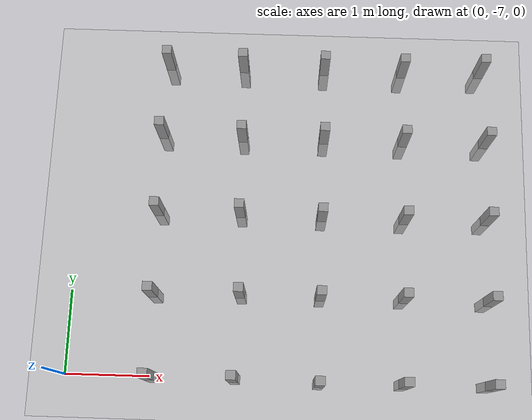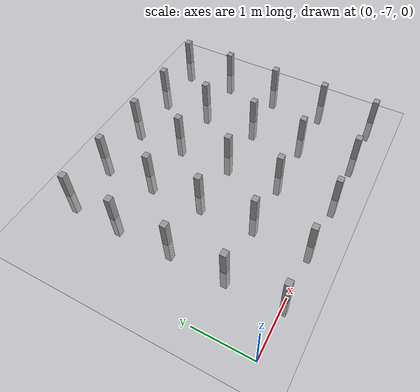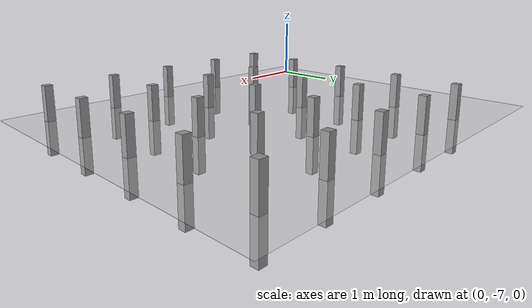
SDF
<sdf version="1.7">
 <world name="default">
  <model name="ground_plane">
   <static>1</static>
   <link name="link">
    <collision name="collision">
     <geometry><plane><normal>0 0 1</normal><size>100 100</size></plane></geometry>
     <surface><friction><ode><mu>100</mu><mu2>50</mu2></ode></friction></surface>
    </collision>
    <visual name="visual">
     <cast_shadows>0</cast_shadows>
     <geometry><plane><normal>0 0 1</normal><size>100 100</size></plane></geometry>
     <material>
      <script><uri>file://media/materials/scripts/gazebo.material</uri><name>Gazebo/Grey</name></script>
     </material>
    </visual>
   </link>
  </model>
  <model name="poles">
   <link name="link_7">
    <inertial>
     <mass>0.0123232</mass>
     <inertia>
      <ixx>0.0010387</ixx>
      <ixy>0</ixy>
      <ixz>0</ixz>
      <iyy>0.00104054</iyy>
      <iyz>0</iyz>
      <izz>2.53698e-05</izz>
     </inertia>
    </inertial>
    <pose>-1.97597 1.95861 0 0 -0 0</pose>
    <visual name="visual">
     <geometry><box><size>0.115098 0.107036 1</size></box></geometry>
     <material>
      <lighting>1</lighting>
      <script><uri>file://media/materials/scripts/gazebo.material</uri><name>Gazebo/Grey</name></script>
      <shader type="pixel"/>
     </material>
    </visual>
    <collision name="collision">
     <geometry><box><size>0.115098 0.107036 1</size></box></geometry>
     <surface>
      <friction>
       <ode><mu>1</mu><mu2>1</mu2><fdir1>0 0 0</fdir1><slip1>0</slip1><slip2>0</slip2></ode>
       <torsional>
        <coefficient>1</coefficient>
        <patch_radius>0</patch_radius>
        <surface_radius>0</surface_radius>
        <use_patch_radius>1</use_patch_radius>
        <ode><slip>0</slip></ode>
       </torsional>
      </friction>
      <bounce><restitution_coefficient>0</restitution_coefficient><threshold>1e+06</threshold></bounce>
      <contact>
       <collide_without_contact>0</collide_without_contact>
       <collide_without_contact_bitmask>1</collide_without_contact_bitmask>
       <collide_bitmask>1</collide_bitmask>
       <ode>
        <soft_cfm>0</soft_cfm>
        <soft_erp>0.2</soft_erp>
        <kp>1e+13</kp>
        <kd>1</kd>
        <max_vel>0.01</max_vel>
        <min_depth>0</min_depth>
       </ode>
       <bullet>
        <split_impulse>1</split_impulse>
        <split_impulse_penetration_threshold>-0.01</split_impulse_penetration_threshold>
        <soft_cfm>0</soft_cfm>
        <soft_erp>0.2</soft_erp>
        <kp>1e+13</kp>
        <kd>1</kd>
       </bullet>
      </contact>
     </surface>
    </collision>
   </link>
   <link name="link_7_clone">
    <inertial>
     <mass>0.0123232</mass>
     <inertia>
      <ixx>0.0010387</ixx>
      <ixy>0</ixy>
      <ixz>0</ixz>
      <iyy>0.00104054</iyy>
      <iyz>0</iyz>
      <izz>2.53698e-05</izz>
     </inertia>
    </inertial>
    <pose>-1.03349 1.94927 0 0 -0 0</pose>
    <visual name="visual">
     <geometry><box><size>0.115098 0.107036 1</size></box></geometry>
     <material>
      <lighting>1</lighting>
      <script><uri>file://media/materials/scripts/gazebo.material</uri><name>Gazebo/Grey</name></script>
      <shader type="pixel"/>
     </material>
    </visual>
    <collision name="collision">
     <geometry><box><size>0.115098 0.107036 1</size></box></geometry>
     <surface>
      <friction>
       <ode><mu>1</mu><mu2>1</mu2><fdir1>0 0 0</fdir1><slip1>0</slip1><slip2>0</slip2></ode>
       <torsional>
        <coefficient>1</coefficient>
        <patch_radius>0</patch_radius>
        <surface_radius>0</surface_radius>
        <use_patch_radius>1</use_patch_radius>
        <ode><slip>0</slip></ode>
       </torsional>
      </friction>
      <bounce><restitution_coefficient>0</restitution_coefficient><threshold>1e+06</threshold></bounce>
      <contact>
       <collide_without_contact>0</collide_without_contact>
       <collide_without_contact_bitmask>1</collide_without_contact_bitmask>
       <collide_bitmask>1</collide_bitmask>
       <ode>
        <soft_cfm>0</soft_cfm>
        <soft_erp>0.2</soft_erp>
        <kp>1e+13</kp>
        <kd>1</kd>
        <max_vel>0.01</max_vel>
        <min_depth>0</min_depth>
       </ode>
       <bullet>
        <split_impulse>1</split_impulse>
        <split_impulse_penetration_threshold>-0.01</split_impulse_penetration_threshold>
        <soft_cfm>0</soft_cfm>
        <soft_erp>0.2</soft_erp>
        <kp>1e+13</kp>
        <kd>1</kd>
       </bullet>
      </contact>
     </surface>
    </collision>
   </link>
   <link name="link_7_clone_0">
    <inertial>
     <mass>0.0123232</mass>
     <inertia>
      <ixx>0.0010387</ixx>
      <ixy>0</ixy>
      <ixz>0</ixz>
      <iyy>0.00104054</iyy>
      <iyz>0</iyz>
      <izz>2.53698e-05</izz>
     </inertia>
    </inertial>
    <pose>-0.010746 1.94415 0 0 -0 0</pose>
    <visual name="visual">
     <geometry><box><size>0.115098 0.107036 1</size></box></geometry>
     <material>
      <lighting>1</lighting>
      <script><uri>file://media/materials/scripts/gazebo.material</uri><name>Gazebo/Grey</name></script>
      <shader type="pixel"/>
     </material>
    </visual>
    <collision name="collision">
     <geometry><box><size>0.115098 0.107036 1</size></box></geometry>
     <surface>
      <friction>
       <ode><mu>1</mu><mu2>1</mu2><fdir1>0 0 0</fdir1><slip1>0</slip1><slip2>0</slip2></ode>
       <torsional>
        <coefficient>1</coefficient>
        <patch_radius>0</patch_radius>
        <surface_radius>0</surface_radius>
        <use_patch_radius>1</use_patch_radius>
        <ode><slip>0</slip></ode>
       </torsional>
      </friction>
      <bounce><restitution_coefficient>0</restitution_coefficient><threshold>1e+06</threshold></bounce>
      <contact>
       <collide_without_contact>0</collide_without_contact>
       <collide_without_contact_bitmask>1</collide_without_contact_bitmask>
       <collide_bitmask>1</collide_bitmask>
       <ode>
        <soft_cfm>0</soft_cfm>
        <soft_erp>0.2</soft_erp>
        <kp>1e+13</kp>
        <kd>1</kd>
        <max_vel>0.01</max_vel>
        <min_depth>0</min_depth>
       </ode>
       <bullet>
        <split_impulse>1</split_impulse>
        <split_impulse_penetration_threshold>-0.01</split_impulse_penetration_threshold>
        <soft_cfm>0</soft_cfm>
        <soft_erp>0.2</soft_erp>
        <kp>1e+13</kp>
        <kd>1</kd>
       </bullet>
      </contact>
     </surface>
    </collision>
   </link>
   <link name="link_7_clone_1">
    <inertial>
     <mass>0.0123232</mass>
     <inertia>
      <ixx>0.0010387</ixx>
      <ixy>0</ixy>
      <ixz>0</ixz>
      <iyy>0.00104054</iyy>
      <iyz>0</iyz>
      <izz>2.53698e-05</izz>
     </inertia>
    </inertial>
    <pose>0.975472 1.93975 0 0 -0 0</pose>
    <visual name="visual">
     <geometry><box><size>0.115098 0.107036 1</size></box></geometry>
     <material>
      <lighting>1</lighting>
      <script><uri>file://media/materials/scripts/gazebo.material</uri><name>Gazebo/Grey</name></script>
      <shader type="pixel"/>
     </material>
    </visual>
    <collision name="collision">
     <geometry><box><size>0.115098 0.107036 1</size></box></geometry>
     <surface>
      <friction>
       <ode><mu>1</mu><mu2>1</mu2><fdir1>0 0 0</fdir1><slip1>0</slip1><slip2>0</slip2></ode>
       <torsional>
        <coefficient>1</coefficient>
        <patch_radius>0</patch_radius>
        <surface_radius>0</surface_radius>
        <use_patch_radius>1</use_patch_radius>
        <ode><slip>0</slip></ode>
       </torsional>
      </friction>
      <bounce><restitution_coefficient>0</restitution_coefficient><threshold>1e+06</threshold></bounce>
      <contact>
       <collide_without_contact>0</collide_without_contact>
       <collide_without_contact_bitmask>1</collide_without_contact_bitmask>
       <collide_bitmask>1</collide_bitmask>
       <ode>
        <soft_cfm>0</soft_cfm>
        <soft_erp>0.2</soft_erp>
        <kp>1e+13</kp>
        <kd>1</kd>
        <max_vel>0.01</max_vel>
        <min_depth>0</min_depth>
       </ode>
       <bullet>
        <split_impulse>1</split_impulse>
        <split_impulse_penetration_threshold>-0.01</split_impulse_penetration_threshold>
        <soft_cfm>0</soft_cfm>
        <soft_erp>0.2</soft_erp>
        <kp>1e+13</kp>
        <kd>1</kd>
       </bullet>
      </contact>
     </surface>
    </collision>
   </link>
   <link name="link_7_clone_10">
    <inertial>
     <mass>0.0123232</mass>
     <inertia>
      <ixx>0.0010387</ixx>
      <ixy>0</ixy>
      <ixz>0</ixz>
      <iyy>0.00104054</iyy>
      <iyz>0</iyz>
      <izz>2.53698e-05</izz>
     </inertia>
    </inertial>
    <pose>-0.001167 0.004188 0 0 -0 0</pose>
    <visual name="visual">
     <geometry><box><size>0.115098 0.107036 1</size></box></geometry>
     <material>
      <lighting>1</lighting>
      <script><uri>file://media/materials/scripts/gazebo.material</uri><name>Gazebo/Grey</name></script>
      <shader type="pixel"/>
     </material>
    </visual>
    <collision name="collision">
     <geometry><box><size>0.115098 0.107036 1</size></box></geometry>
     <surface>
      <friction>
       <ode><mu>1</mu><mu2>1</mu2><fdir1>0 0 0</fdir1><slip1>0</slip1><slip2>0</slip2></ode>
       <torsional>
        <coefficient>1</coefficient>
        <patch_radius>0</patch_radius>
        <surface_radius>0</surface_radius>
        <use_patch_radius>1</use_patch_radius>
        <ode><slip>0</slip></ode>
       </torsional>
      </friction>
      <bounce><restitution_coefficient>0</restitution_coefficient><threshold>1e+06</threshold></bounce>
      <contact>
       <collide_without_contact>0</collide_without_contact>
       <collide_without_contact_bitmask>1</collide_without_contact_bitmask>
       <collide_bitmask>1</collide_bitmask>
       <ode>
        <soft_cfm>0</soft_cfm>
        <soft_erp>0.2</soft_erp>
        <kp>1e+13</kp>
        <kd>1</kd>
        <max_vel>0.01</max_vel>
        <min_depth>0</min_depth>
       </ode>
       <bullet>
        <split_impulse>1</split_impulse>
        <split_impulse_penetration_threshold>-0.01</split_impulse_penetration_threshold>
        <soft_cfm>0</soft_cfm>
        <soft_erp>0.2</soft_erp>
        <kp>1e+13</kp>
        <kd>1</kd>
       </bullet>
      </contact>
     </surface>
    </collision>
   </link>
   <link name="link_7_clone_11">
    <inertial>
     <mass>0.0123232</mass>
     <inertia>
      <ixx>0.0010387</ixx>
      <ixy>0</ixy>
      <ixz>0</ixz>
      <iyy>0.00104054</iyy>
      <iyz>0</iyz>
      <izz>2.53698e-05</izz>
     </inertia>
    </inertial>
    <pose>1.00787 -0.002537 0 0 -0 0</pose>
    <visual name="visual">
     <geometry><box><size>0.115098 0.107036 1</size></box></geometry>
     <material>
      <lighting>1</lighting>
      <script><uri>file://media/materials/scripts/gazebo.material</uri><name>Gazebo/Grey</name></script>
      <shader type="pixel"/>
     </material>
    </visual>
    <collision name="collision">
     <geometry><box><size>0.115098 0.107036 1</size></box></geometry>
     <surface>
      <friction>
       <ode><mu>1</mu><mu2>1</mu2><fdir1>0 0 0</fdir1><slip1>0</slip1><slip2>0</slip2></ode>
       <torsional>
        <coefficient>1</coefficient>
        <patch_radius>0</patch_radius>
        <surface_radius>0</surface_radius>
        <use_patch_radius>1</use_patch_radius>
        <ode><slip>0</slip></ode>
       </torsional>
      </friction>
      <bounce><restitution_coefficient>0</restitution_coefficient><threshold>1e+06</threshold></bounce>
      <contact>
       <collide_without_contact>0</collide_without_contact>
       <collide_without_contact_bitmask>1</collide_without_contact_bitmask>
       <collide_bitmask>1</collide_bitmask>
       <ode>
        <soft_cfm>0</soft_cfm>
        <soft_erp>0.2</soft_erp>
        <kp>1e+13</kp>
        <kd>1</kd>
        <max_vel>0.01</max_vel>
        <min_depth>0</min_depth>
       </ode>
       <bullet>
        <split_impulse>1</split_impulse>
        <split_impulse_penetration_threshold>-0.01</split_impulse_penetration_threshold>
        <soft_cfm>0</soft_cfm>
        <soft_erp>0.2</soft_erp>
        <kp>1e+13</kp>
        <kd>1</kd>
       </bullet>
      </contact>
     </surface>
    </collision>
   </link>
   <link name="link_7_clone_12">
    <inertial>
     <mass>0.0123232</mass>
     <inertia>
      <ixx>0.0010387</ixx>
      <ixy>0</ixy>
      <ixz>0</ixz>
      <iyy>0.00104054</iyy>
      <iyz>0</iyz>
      <izz>2.53698e-05</izz>
     </inertia>
    </inertial>
    <pose>2.00979 0.01516 0 0 -0 0</pose>
    <visual name="visual">
     <geometry><box><size>0.115098 0.107036 1</size></box></geometry>
     <material>
      <lighting>1</lighting>
      <script><uri>file://media/materials/scripts/gazebo.material</uri><name>Gazebo/Grey</name></script>
      <shader type="pixel"/>
     </material>
    </visual>
    <collision name="collision">
     <geometry><box><size>0.115098 0.107036 1</size></box></geometry>
     <surface>
      <friction>
       <ode><mu>1</mu><mu2>1</mu2><fdir1>0 0 0</fdir1><slip1>0</slip1><slip2>0</slip2></ode>
       <torsional>
        <coefficient>1</coefficient>
        <patch_radius>0</patch_radius>
        <surface_radius>0</surface_radius>
        <use_patch_radius>1</use_patch_radius>
        <ode><slip>0</slip></ode>
       </torsional>
      </friction>
      <bounce><restitution_coefficient>0</restitution_coefficient><threshold>1e+06</threshold></bounce>
      <contact>
       <collide_without_contact>0</collide_without_contact>
       <collide_without_contact_bitmask>1</collide_without_contact_bitmask>
       <collide_bitmask>1</collide_bitmask>
       <ode>
        <soft_cfm>0</soft_cfm>
        <soft_erp>0.2</soft_erp>
        <kp>1e+13</kp>
        <kd>1</kd>
        <max_vel>0.01</max_vel>
        <min_depth>0</min_depth>
       </ode>
       <bullet>
        <split_impulse>1</split_impulse>
        <split_impulse_penetration_threshold>-0.01</split_impulse_penetration_threshold>
        <soft_cfm>0</soft_cfm>
        <soft_erp>0.2</soft_erp>
        <kp>1e+13</kp>
        <kd>1</kd>
       </bullet>
      </contact>
     </surface>
    </collision>
   </link>
   <link name="link_7_clone_13">
    <inertial>
     <mass>0.0123232</mass>
     <inertia>
      <ixx>0.0010387</ixx>
      <ixy>0</ixy>
      <ixz>0</ixz>
      <iyy>0.00104054</iyy>
      <iyz>0</iyz>
      <izz>2.53698e-05</izz>
     </inertia>
    </inertial>
    <pose>-2.01398 -0.996581 0 0 -0 0</pose>
    <visual name="visual">
     <geometry><box><size>0.115098 0.107036 1</size></box></geometry>
     <material>
      <lighting>1</lighting>
      <script><uri>file://media/materials/scripts/gazebo.material</uri><name>Gazebo/Grey</name></script>
      <shader type="pixel"/>
     </material>
    </visual>
    <collision name="collision">
     <geometry><box><size>0.115098 0.107036 1</size></box></geometry>
     <surface>
      <friction>
       <ode><mu>1</mu><mu2>1</mu2><fdir1>0 0 0</fdir1><slip1>0</slip1><slip2>0</slip2></ode>
       <torsional>
        <coefficient>1</coefficient>
        <patch_radius>0</patch_radius>
        <surface_radius>0</surface_radius>
        <use_patch_radius>1</use_patch_radius>
        <ode><slip>0</slip></ode>
       </torsional>
      </friction>
      <bounce><restitution_coefficient>0</restitution_coefficient><threshold>1e+06</threshold></bounce>
      <contact>
       <collide_without_contact>0</collide_without_contact>
       <collide_without_contact_bitmask>1</collide_without_contact_bitmask>
       <collide_bitmask>1</collide_bitmask>
       <ode>
        <soft_cfm>0</soft_cfm>
        <soft_erp>0.2</soft_erp>
        <kp>1e+13</kp>
        <kd>1</kd>
        <max_vel>0.01</max_vel>
        <min_depth>0</min_depth>
       </ode>
       <bullet>
        <split_impulse>1</split_impulse>
        <split_impulse_penetration_threshold>-0.01</split_impulse_penetration_threshold>
        <soft_cfm>0</soft_cfm>
        <soft_erp>0.2</soft_erp>
        <kp>1e+13</kp>
        <kd>1</kd>
       </bullet>
      </contact>
     </surface>
    </collision>
   </link>
   <link name="link_7_clone_14">
    <inertial>
     <mass>0.0123232</mass>
     <inertia>
      <ixx>0.0010387</ixx>
      <ixy>0</ixy>
      <ixz>0</ixz>
      <iyy>0.00104054</iyy>
      <iyz>0</iyz>
      <izz>2.53698e-05</izz>
     </inertia>
    </inertial>
    <pose>-0.964132 -0.976664 0 0 -0 0</pose>
    <visual name="visual">
     <geometry><box><size>0.115098 0.107036 1</size></box></geometry>
     <material>
      <lighting>1</lighting>
      <script><uri>file://media/materials/scripts/gazebo.material</uri><name>Gazebo/Grey</name></script>
      <shader type="pixel"/>
     </material>
    </visual>
    <collision name="collision">
     <geometry><box><size>0.115098 0.107036 1</size></box></geometry>
     <surface>
      <friction>
       <ode><mu>1</mu><mu2>1</mu2><fdir1>0 0 0</fdir1><slip1>0</slip1><slip2>0</slip2></ode>
       <torsional>
        <coefficient>1</coefficient>
        <patch_radius>0</patch_radius>
        <surface_radius>0</surface_radius>
        <use_patch_radius>1</use_patch_radius>
        <ode><slip>0</slip></ode>
       </torsional>
      </friction>
      <bounce><restitution_coefficient>0</restitution_coefficient><threshold>1e+06</threshold></bounce>
      <contact>
       <collide_without_contact>0</collide_without_contact>
       <collide_without_contact_bitmask>1</collide_without_contact_bitmask>
       <collide_bitmask>1</collide_bitmask>
       <ode>
        <soft_cfm>0</soft_cfm>
        <soft_erp>0.2</soft_erp>
        <kp>1e+13</kp>
        <kd>1</kd>
        <max_vel>0.01</max_vel>
        <min_depth>0</min_depth>
       </ode>
       <bullet>
        <split_impulse>1</split_impulse>
        <split_impulse_penetration_threshold>-0.01</split_impulse_penetration_threshold>
        <soft_cfm>0</soft_cfm>
        <soft_erp>0.2</soft_erp>
        <kp>1e+13</kp>
        <kd>1</kd>
       </bullet>
      </contact>
     </surface>
    </collision>
   </link>
   <link name="link_7_clone_15">
    <inertial>
     <mass>0.0123232</mass>
     <inertia>
      <ixx>0.0010387</ixx>
      <ixy>0</ixy>
      <ixz>0</ixz>
      <iyy>0.00104054</iyy>
      <iyz>0</iyz>
      <izz>2.53698e-05</izz>
     </inertia>
    </inertial>
    <pose>0.001948 -0.983432 0 0 -0 0</pose>
    <visual name="visual">
     <geometry><box><size>0.115098 0.107036 1</size></box></geometry>
     <material>
      <lighting>1</lighting>
      <script><uri>file://media/materials/scripts/gazebo.material</uri><name>Gazebo/Grey</name></script>
      <shader type="pixel"/>
     </material>
    </visual>
    <collision name="collision">
     <geometry><box><size>0.115098 0.107036 1</size></box></geometry>
     <surface>
      <friction>
       <ode><mu>1</mu><mu2>1</mu2><fdir1>0 0 0</fdir1><slip1>0</slip1><slip2>0</slip2></ode>
       <torsional>
        <coefficient>1</coefficient>
        <patch_radius>0</patch_radius>
        <surface_radius>0</surface_radius>
        <use_patch_radius>1</use_patch_radius>
        <ode><slip>0</slip></ode>
       </torsional>
      </friction>
      <bounce><restitution_coefficient>0</restitution_coefficient><threshold>1e+06</threshold></bounce>
      <contact>
       <collide_without_contact>0</collide_without_contact>
       <collide_without_contact_bitmask>1</collide_without_contact_bitmask>
       <collide_bitmask>1</collide_bitmask>
       <ode>
        <soft_cfm>0</soft_cfm>
        <soft_erp>0.2</soft_erp>
        <kp>1e+13</kp>
        <kd>1</kd>
        <max_vel>0.01</max_vel>
        <min_depth>0</min_depth>
       </ode>
       <bullet>
        <split_impulse>1</split_impulse>
        <split_impulse_penetration_threshold>-0.01</split_impulse_penetration_threshold>
        <soft_cfm>0</soft_cfm>
        <soft_erp>0.2</soft_erp>
        <kp>1e+13</kp>
        <kd>1</kd>
       </bullet>
      </contact>
     </surface>
    </collision>
   </link>
   <link name="link_7_clone_16">
    <inertial>
     <mass>0.0123232</mass>
     <inertia>
      <ixx>0.0010387</ixx>
      <ixy>0</ixy>
      <ixz>0</ixz>
      <iyy>0.00104054</iyy>
      <iyz>0</iyz>
      <izz>2.53698e-05</izz>
     </inertia>
    </inertial>
    <pose>1.00262 -0.979651 0 0 -0 0</pose>
    <visual name="visual">
     <geometry><box><size>0.115098 0.107036 1</size></box></geometry>
     <material>
      <lighting>1</lighting>
      <script><uri>file://media/materials/scripts/gazebo.material</uri><name>Gazebo/Grey</name></script>
      <shader type="pixel"/>
     </material>
    </visual>
    <collision name="collision">
     <geometry><box><size>0.115098 0.107036 1</size></box></geometry>
     <surface>
      <friction>
       <ode><mu>1</mu><mu2>1</mu2><fdir1>0 0 0</fdir1><slip1>0</slip1><slip2>0</slip2></ode>
       <torsional>
        <coefficient>1</coefficient>
        <patch_radius>0</patch_radius>
        <surface_radius>0</surface_radius>
        <use_patch_radius>1</use_patch_radius>
        <ode><slip>0</slip></ode>
       </torsional>
      </friction>
      <bounce><restitution_coefficient>0</restitution_coefficient><threshold>1e+06</threshold></bounce>
      <contact>
       <collide_without_contact>0</collide_without_contact>
       <collide_without_contact_bitmask>1</collide_without_contact_bitmask>
       <collide_bitmask>1</collide_bitmask>
       <ode>
        <soft_cfm>0</soft_cfm>
        <soft_erp>0.2</soft_erp>
        <kp>1e+13</kp>
        <kd>1</kd>
        <max_vel>0.01</max_vel>
        <min_depth>0</min_depth>
       </ode>
       <bullet>
        <split_impulse>1</split_impulse>
        <split_impulse_penetration_threshold>-0.01</split_impulse_penetration_threshold>
        <soft_cfm>0</soft_cfm>
        <soft_erp>0.2</soft_erp>
        <kp>1e+13</kp>
        <kd>1</kd>
       </bullet>
      </contact>
     </surface>
    </collision>
   </link>
   <link name="link_7_clone_17">
    <inertial>
     <mass>0.0123232</mass>
     <inertia>
      <ixx>0.0010387</ixx>
      <ixy>0</ixy>
      <ixz>0</ixz>
      <iyy>0.00104054</iyy>
      <iyz>0</iyz>
      <izz>2.53698e-05</izz>
     </inertia>
    </inertial>
    <pose>2.02615 -0.987493 0 0 -0 0</pose>
    <visual name="visual">
     <geometry><box><size>0.115098 0.107036 1</size></box></geometry>
     <material>
      <lighting>1</lighting>
      <script><uri>file://media/materials/scripts/gazebo.material</uri><name>Gazebo/Grey</name></script>
      <shader type="pixel"/>
     </material>
    </visual>
    <collision name="collision">
     <geometry><box><size>0.115098 0.107036 1</size></box></geometry>
     <surface>
      <friction>
       <ode><mu>1</mu><mu2>1</mu2><fdir1>0 0 0</fdir1><slip1>0</slip1><slip2>0</slip2></ode>
       <torsional>
        <coefficient>1</coefficient>
        <patch_radius>0</patch_radius>
        <surface_radius>0</surface_radius>
        <use_patch_radius>1</use_patch_radius>
        <ode><slip>0</slip></ode>
       </torsional>
      </friction>
      <bounce><restitution_coefficient>0</restitution_coefficient><threshold>1e+06</threshold></bounce>
      <contact>
       <collide_without_contact>0</collide_without_contact>
       <collide_without_contact_bitmask>1</collide_without_contact_bitmask>
       <collide_bitmask>1</collide_bitmask>
       <ode>
        <soft_cfm>0</soft_cfm>
        <soft_erp>0.2</soft_erp>
        <kp>1e+13</kp>
        <kd>1</kd>
        <max_vel>0.01</max_vel>
        <min_depth>0</min_depth>
       </ode>
       <bullet>
        <split_impulse>1</split_impulse>
        <split_impulse_penetration_threshold>-0.01</split_impulse_penetration_threshold>
        <soft_cfm>0</soft_cfm>
        <soft_erp>0.2</soft_erp>
        <kp>1e+13</kp>
        <kd>1</kd>
       </bullet>
      </contact>
     </surface>
    </collision>
   </link>
   <link name="link_7_clone_18">
    <inertial>
     <mass>0.0123232</mass>
     <inertia>
      <ixx>0.0010387</ixx>
      <ixy>0</ixy>
      <ixz>0</ixz>
      <iyy>0.00104054</iyy>
      <iyz>0</iyz>
      <izz>2.53698e-05</izz>
     </inertia>
    </inertial>
    <pose>-2.00298 -1.98472 0 0 -0 0</pose>
    <visual name="visual">
     <geometry><box><size>0.115098 0.107036 1</size></box></geometry>
     <material>
      <lighting>1</lighting>
      <script><uri>file://media/materials/scripts/gazebo.material</uri><name>Gazebo/Grey</name></script>
      <shader type="pixel"/>
     </material>
    </visual>
    <collision name="collision">
     <geometry><box><size>0.115098 0.107036 1</size></box></geometry>
     <surface>
      <friction>
       <ode><mu>1</mu><mu2>1</mu2><fdir1>0 0 0</fdir1><slip1>0</slip1><slip2>0</slip2></ode>
       <torsional>
        <coefficient>1</coefficient>
        <patch_radius>0</patch_radius>
        <surface_radius>0</surface_radius>
        <use_patch_radius>1</use_patch_radius>
        <ode><slip>0</slip></ode>
       </torsional>
      </friction>
      <bounce><restitution_coefficient>0</restitution_coefficient><threshold>1e+06</threshold></bounce>
      <contact>
       <collide_without_contact>0</collide_without_contact>
       <collide_without_contact_bitmask>1</collide_without_contact_bitmask>
       <collide_bitmask>1</collide_bitmask>
       <ode>
        <soft_cfm>0</soft_cfm>
        <soft_erp>0.2</soft_erp>
        <kp>1e+13</kp>
        <kd>1</kd>
        <max_vel>0.01</max_vel>
        <min_depth>0</min_depth>
       </ode>
       <bullet>
        <split_impulse>1</split_impulse>
        <split_impulse_penetration_threshold>-0.01</split_impulse_penetration_threshold>
        <soft_cfm>0</soft_cfm>
        <soft_erp>0.2</soft_erp>
        <kp>1e+13</kp>
        <kd>1</kd>
       </bullet>
      </contact>
     </surface>
    </collision>
   </link>
   <link name="link_7_clone_19">
    <inertial>
     <mass>0.0123232</mass>
     <inertia>
      <ixx>0.0010387</ixx>
      <ixy>0</ixy>
      <ixz>0</ixz>
      <iyy>0.00104054</iyy>
      <iyz>0</iyz>
      <izz>2.53698e-05</izz>
     </inertia>
    </inertial>
    <pose>-1.00569 -1.97888 0 0 -0 0</pose>
    <visual name="visual">
     <geometry><box><size>0.115098 0.107036 1</size></box></geometry>
     <material>
      <lighting>1</lighting>
      <script><uri>file://media/materials/scripts/gazebo.material</uri><name>Gazebo/Grey</name></script>
      <shader type="pixel"/>
     </material>
    </visual>
    <collision name="collision">
     <geometry><box><size>0.115098 0.107036 1</size></box></geometry>
     <surface>
      <friction>
       <ode><mu>1</mu><mu2>1</mu2><fdir1>0 0 0</fdir1><slip1>0</slip1><slip2>0</slip2></ode>
       <torsional>
        <coefficient>1</coefficient>
        <patch_radius>0</patch_radius>
        <surface_radius>0</surface_radius>
        <use_patch_radius>1</use_patch_radius>
        <ode><slip>0</slip></ode>
       </torsional>
      </friction>
      <bounce><restitution_coefficient>0</restitution_coefficient><threshold>1e+06</threshold></bounce>
      <contact>
       <collide_without_contact>0</collide_without_contact>
       <collide_without_contact_bitmask>1</collide_without_contact_bitmask>
       <collide_bitmask>1</collide_bitmask>
       <ode>
        <soft_cfm>0</soft_cfm>
        <soft_erp>0.2</soft_erp>
        <kp>1e+13</kp>
        <kd>1</kd>
        <max_vel>0.01</max_vel>
        <min_depth>0</min_depth>
       </ode>
       <bullet>
        <split_impulse>1</split_impulse>
        <split_impulse_penetration_threshold>-0.01</split_impulse_penetration_threshold>
        <soft_cfm>0</soft_cfm>
        <soft_erp>0.2</soft_erp>
        <kp>1e+13</kp>
        <kd>1</kd>
       </bullet>
      </contact>
     </surface>
    </collision>
   </link>
   <link name="link_7_clone_2">
    <inertial>
     <mass>0.0123232</mass>
     <inertia>
      <ixx>0.0010387</ixx>
      <ixy>0</ixy>
      <ixz>0</ixz>
      <iyy>0.00104054</iyy>
      <iyz>0</iyz>
      <izz>2.53698e-05</izz>
     </inertia>
    </inertial>
    <pose>1.96667 1.96323 0 0 -0 0</pose>
    <visual name="visual">
     <geometry><box><size>0.115098 0.107036 1</size></box></geometry>
     <material>
      <lighting>1</lighting>
      <script><uri>file://media/materials/scripts/gazebo.material</uri><name>Gazebo/Grey</name></script>
      <shader type="pixel"/>
     </material>
    </visual>
    <collision name="collision">
     <geometry><box><size>0.115098 0.107036 1</size></box></geometry>
     <surface>
      <friction>
       <ode><mu>1</mu><mu2>1</mu2><fdir1>0 0 0</fdir1><slip1>0</slip1><slip2>0</slip2></ode>
       <torsional>
        <coefficient>1</coefficient>
        <patch_radius>0</patch_radius>
        <surface_radius>0</surface_radius>
        <use_patch_radius>1</use_patch_radius>
        <ode><slip>0</slip></ode>
       </torsional>
      </friction>
      <bounce><restitution_coefficient>0</restitution_coefficient><threshold>1e+06</threshold></bounce>
      <contact>
       <collide_without_contact>0</collide_without_contact>
       <collide_without_contact_bitmask>1</collide_without_contact_bitmask>
       <collide_bitmask>1</collide_bitmask>
       <ode>
        <soft_cfm>0</soft_cfm>
        <soft_erp>0.2</soft_erp>
        <kp>1e+13</kp>
        <kd>1</kd>
        <max_vel>0.01</max_vel>
        <min_depth>0</min_depth>
       </ode>
       <bullet>
        <split_impulse>1</split_impulse>
        <split_impulse_penetration_threshold>-0.01</split_impulse_penetration_threshold>
        <soft_cfm>0</soft_cfm>
        <soft_erp>0.2</soft_erp>
        <kp>1e+13</kp>
        <kd>1</kd>
       </bullet>
      </contact>
     </surface>
    </collision>
   </link>
   <link name="link_7_clone_20">
    <inertial>
     <mass>0.0123232</mass>
     <inertia>
      <ixx>0.0010387</ixx>
      <ixy>0</ixy>
      <ixz>0</ixz>
      <iyy>0.00104054</iyy>
      <iyz>0</iyz>
      <izz>2.53698e-05</izz>
     </inertia>
    </inertial>
    <pose>0.005657 -2.00991 0 0 -0 0</pose>
    <visual name="visual">
     <geometry><box><size>0.115098 0.107036 1</size></box></geometry>
     <material>
      <lighting>1</lighting>
      <script><uri>file://media/materials/scripts/gazebo.material</uri><name>Gazebo/Grey</name></script>
      <shader type="pixel"/>
     </material>
    </visual>
    <collision name="collision">
     <geometry><box><size>0.115098 0.107036 1</size></box></geometry>
     <surface>
      <friction>
       <ode><mu>1</mu><mu2>1</mu2><fdir1>0 0 0</fdir1><slip1>0</slip1><slip2>0</slip2></ode>
       <torsional>
        <coefficient>1</coefficient>
        <patch_radius>0</patch_radius>
        <surface_radius>0</surface_radius>
        <use_patch_radius>1</use_patch_radius>
        <ode><slip>0</slip></ode>
       </torsional>
      </friction>
      <bounce><restitution_coefficient>0</restitution_coefficient><threshold>1e+06</threshold></bounce>
      <contact>
       <collide_without_contact>0</collide_without_contact>
       <collide_without_contact_bitmask>1</collide_without_contact_bitmask>
       <collide_bitmask>1</collide_bitmask>
       <ode>
        <soft_cfm>0</soft_cfm>
        <soft_erp>0.2</soft_erp>
        <kp>1e+13</kp>
        <kd>1</kd>
        <max_vel>0.01</max_vel>
        <min_depth>0</min_depth>
       </ode>
       <bullet>
        <split_impulse>1</split_impulse>
        <split_impulse_penetration_threshold>-0.01</split_impulse_penetration_threshold>
        <soft_cfm>0</soft_cfm>
        <soft_erp>0.2</soft_erp>
        <kp>1e+13</kp>
        <kd>1</kd>
       </bullet>
      </contact>
     </surface>
    </collision>
   </link>
   <link name="link_7_clone_21">
    <inertial>
     <mass>0.0123232</mass>
     <inertia>
      <ixx>0.0010387</ixx>
      <ixy>0</ixy>
      <ixz>0</ixz>
      <iyy>0.00104054</iyy>
      <iyz>0</iyz>
      <izz>2.53698e-05</izz>
     </inertia>
    </inertial>
    <pose>1.00678 -1.99195 0 0 -0 0</pose>
    <visual name="visual">
     <geometry><box><size>0.115098 0.107036 1</size></box></geometry>
     <material>
      <lighting>1</lighting>
      <script><uri>file://media/materials/scripts/gazebo.material</uri><name>Gazebo/Grey</name></script>
      <shader type="pixel"/>
     </material>
    </visual>
    <collision name="collision">
     <geometry><box><size>0.115098 0.107036 1</size></box></geometry>
     <surface>
      <friction>
       <ode><mu>1</mu><mu2>1</mu2><fdir1>0 0 0</fdir1><slip1>0</slip1><slip2>0</slip2></ode>
       <torsional>
        <coefficient>1</coefficient>
        <patch_radius>0</patch_radius>
        <surface_radius>0</surface_radius>
        <use_patch_radius>1</use_patch_radius>
        <ode><slip>0</slip></ode>
       </torsional>
      </friction>
      <bounce><restitution_coefficient>0</restitution_coefficient><threshold>1e+06</threshold></bounce>
      <contact>
       <collide_without_contact>0</collide_without_contact>
       <collide_without_contact_bitmask>1</collide_without_contact_bitmask>
       <collide_bitmask>1</collide_bitmask>
       <ode>
        <soft_cfm>0</soft_cfm>
        <soft_erp>0.2</soft_erp>
        <kp>1e+13</kp>
        <kd>1</kd>
        <max_vel>0.01</max_vel>
        <min_depth>0</min_depth>
       </ode>
       <bullet>
        <split_impulse>1</split_impulse>
        <split_impulse_penetration_threshold>-0.01</split_impulse_penetration_threshold>
        <soft_cfm>0</soft_cfm>
        <soft_erp>0.2</soft_erp>
        <kp>1e+13</kp>
        <kd>1</kd>
       </bullet>
      </contact>
     </surface>
    </collision>
   </link>
   <link name="link_7_clone_22">
    <inertial>
     <mass>0.0123232</mass>
     <inertia>
      <ixx>0.0010387</ixx>
      <ixy>0</ixy>
      <ixz>0</ixz>
      <iyy>0.00104054</iyy>
      <iyz>0</iyz>
      <izz>2.53698e-05</izz>
     </inertia>
    </inertial>
    <pose>2.02254 -1.98631 0 0 -0 0</pose>
    <visual name="visual">
     <geometry><box><size>0.115098 0.107036 1</size></box></geometry>
     <material>
      <lighting>1</lighting>
      <script><uri>file://media/materials/scripts/gazebo.material</uri><name>Gazebo/Grey</name></script>
      <shader type="pixel"/>
     </material>
    </visual>
    <collision name="collision">
     <geometry><box><size>0.115098 0.107036 1</size></box></geometry>
     <surface>
      <friction>
       <ode><mu>1</mu><mu2>1</mu2><fdir1>0 0 0</fdir1><slip1>0</slip1><slip2>0</slip2></ode>
       <torsional>
        <coefficient>1</coefficient>
        <patch_radius>0</patch_radius>
        <surface_radius>0</surface_radius>
        <use_patch_radius>1</use_patch_radius>
        <ode><slip>0</slip></ode>
       </torsional>
      </friction>
      <bounce><restitution_coefficient>0</restitution_coefficient><threshold>1e+06</threshold></bounce>
      <contact>
       <collide_without_contact>0</collide_without_contact>
       <collide_without_contact_bitmask>1</collide_without_contact_bitmask>
       <collide_bitmask>1</collide_bitmask>
       <ode>
        <soft_cfm>0</soft_cfm>
        <soft_erp>0.2</soft_erp>
        <kp>1e+13</kp>
        <kd>1</kd>
        <max_vel>0.01</max_vel>
        <min_depth>0</min_depth>
       </ode>
       <bullet>
        <split_impulse>1</split_impulse>
        <split_impulse_penetration_threshold>-0.01</split_impulse_penetration_threshold>
        <soft_cfm>0</soft_cfm>
        <soft_erp>0.2</soft_erp>
        <kp>1e+13</kp>
        <kd>1</kd>
       </bullet>
      </contact>
     </surface>
    </collision>
   </link>
   <link name="link_7_clone_3">
    <inertial>
     <mass>0.0123232</mass>
     <inertia>
      <ixx>0.0010387</ixx>
      <ixy>0</ixy>
      <ixz>0</ixz>
      <iyy>0.00104054</iyy>
      <iyz>0</iyz>
      <izz>2.53698e-05</izz>
     </inertia>
    </inertial>
    <pose>-2.01097 1.02468 0 0 -0 0</pose>
    <visual name="visual">
     <geometry><box><size>0.115098 0.107036 1</size></box></geometry>
     <material>
      <lighting>1</lighting>
      <script><uri>file://media/materials/scripts/gazebo.material</uri><name>Gazebo/Grey</name></script>
      <shader type="pixel"/>
     </material>
    </visual>
    <collision name="collision">
     <geometry><box><size>0.115098 0.107036 1</size></box></geometry>
     <surface>
      <friction>
       <ode><mu>1</mu><mu2>1</mu2><fdir1>0 0 0</fdir1><slip1>0</slip1><slip2>0</slip2></ode>
       <torsional>
        <coefficient>1</coefficient>
        <patch_radius>0</patch_radius>
        <surface_radius>0</surface_radius>
        <use_patch_radius>1</use_patch_radius>
        <ode><slip>0</slip></ode>
       </torsional>
      </friction>
      <bounce><restitution_coefficient>0</restitution_coefficient><threshold>1e+06</threshold></bounce>
      <contact>
       <collide_without_contact>0</collide_without_contact>
       <collide_without_contact_bitmask>1</collide_without_contact_bitmask>
       <collide_bitmask>1</collide_bitmask>
       <ode>
        <soft_cfm>0</soft_cfm>
        <soft_erp>0.2</soft_erp>
        <kp>1e+13</kp>
        <kd>1</kd>
        <max_vel>0.01</max_vel>
        <min_depth>0</min_depth>
       </ode>
       <bullet>
        <split_impulse>1</split_impulse>
        <split_impulse_penetration_threshold>-0.01</split_impulse_penetration_threshold>
        <soft_cfm>0</soft_cfm>
        <soft_erp>0.2</soft_erp>
        <kp>1e+13</kp>
        <kd>1</kd>
       </bullet>
      </contact>
     </surface>
    </collision>
   </link>
   <link name="link_7_clone_4">
    <inertial>
     <mass>0.0123232</mass>
     <inertia>
      <ixx>0.0010387</ixx>
      <ixy>0</ixy>
      <ixz>0</ixz>
      <iyy>0.00104054</iyy>
      <iyz>0</iyz>
      <izz>2.53698e-05</izz>
     </inertia>
    </inertial>
    <pose>-1.01079 1.00608 0 0 -0 0</pose>
    <visual name="visual">
     <geometry><box><size>0.115098 0.107036 1</size></box></geometry>
     <material>
      <lighting>1</lighting>
      <script><uri>file://media/materials/scripts/gazebo.material</uri><name>Gazebo/Grey</name></script>
      <shader type="pixel"/>
     </material>
    </visual>
    <collision name="collision">
     <geometry><box><size>0.115098 0.107036 1</size></box></geometry>
     <surface>
      <friction>
       <ode><mu>1</mu><mu2>1</mu2><fdir1>0 0 0</fdir1><slip1>0</slip1><slip2>0</slip2></ode>
       <torsional>
        <coefficient>1</coefficient>
        <patch_radius>0</patch_radius>
        <surface_radius>0</surface_radius>
        <use_patch_radius>1</use_patch_radius>
        <ode><slip>0</slip></ode>
       </torsional>
      </friction>
      <bounce><restitution_coefficient>0</restitution_coefficient><threshold>1e+06</threshold></bounce>
      <contact>
       <collide_without_contact>0</collide_without_contact>
       <collide_without_contact_bitmask>1</collide_without_contact_bitmask>
       <collide_bitmask>1</collide_bitmask>
       <ode>
        <soft_cfm>0</soft_cfm>
        <soft_erp>0.2</soft_erp>
        <kp>1e+13</kp>
        <kd>1</kd>
        <max_vel>0.01</max_vel>
        <min_depth>0</min_depth>
       </ode>
       <bullet>
        <split_impulse>1</split_impulse>
        <split_impulse_penetration_threshold>-0.01</split_impulse_penetration_threshold>
        <soft_cfm>0</soft_cfm>
        <soft_erp>0.2</soft_erp>
        <kp>1e+13</kp>
        <kd>1</kd>
       </bullet>
      </contact>
     </surface>
    </collision>
   </link>
   <link name="link_7_clone_5">
    <inertial>
     <mass>0.0123232</mass>
     <inertia>
      <ixx>0.0010387</ixx>
      <ixy>0</ixy>
      <ixz>0</ixz>
      <iyy>0.00104054</iyy>
      <iyz>0</iyz>
      <izz>2.53698e-05</izz>
     </inertia>
    </inertial>
    <pose>0.002482 1.01262 0 0 -0 0</pose>
    <visual name="visual">
     <geometry><box><size>0.115098 0.107036 1</size></box></geometry>
     <material>
      <lighting>1</lighting>
      <script><uri>file://media/materials/scripts/gazebo.material</uri><name>Gazebo/Grey</name></script>
      <shader type="pixel"/>
     </material>
    </visual>
    <collision name="collision">
     <geometry><box><size>0.115098 0.107036 1</size></box></geometry>
     <surface>
      <friction>
       <ode><mu>1</mu><mu2>1</mu2><fdir1>0 0 0</fdir1><slip1>0</slip1><slip2>0</slip2></ode>
       <torsional>
        <coefficient>1</coefficient>
        <patch_radius>0</patch_radius>
        <surface_radius>0</surface_radius>
        <use_patch_radius>1</use_patch_radius>
        <ode><slip>0</slip></ode>
       </torsional>
      </friction>
      <bounce><restitution_coefficient>0</restitution_coefficient><threshold>1e+06</threshold></bounce>
      <contact>
       <collide_without_contact>0</collide_without_contact>
       <collide_without_contact_bitmask>1</collide_without_contact_bitmask>
       <collide_bitmask>1</collide_bitmask>
       <ode>
        <soft_cfm>0</soft_cfm>
        <soft_erp>0.2</soft_erp>
        <kp>1e+13</kp>
        <kd>1</kd>
        <max_vel>0.01</max_vel>
        <min_depth>0</min_depth>
       </ode>
       <bullet>
        <split_impulse>1</split_impulse>
        <split_impulse_penetration_threshold>-0.01</split_impulse_penetration_threshold>
        <soft_cfm>0</soft_cfm>
        <soft_erp>0.2</soft_erp>
        <kp>1e+13</kp>
        <kd>1</kd>
       </bullet>
      </contact>
     </surface>
    </collision>
   </link>
   <link name="link_7_clone_6">
    <inertial>
     <mass>0.0123232</mass>
     <inertia>
      <ixx>0.0010387</ixx>
      <ixy>0</ixy>
      <ixz>0</ixz>
      <iyy>0.00104054</iyy>
      <iyz>0</iyz>
      <izz>2.53698e-05</izz>
     </inertia>
    </inertial>
    <pose>0.993023 1.00692 0 0 -0 0</pose>
    <visual name="visual">
     <geometry><box><size>0.115098 0.107036 1</size></box></geometry>
     <material>
      <lighting>1</lighting>
      <script><uri>file://media/materials/scripts/gazebo.material</uri><name>Gazebo/Grey</name></script>
      <shader type="pixel"/>
     </material>
    </visual>
    <collision name="collision">
     <geometry><box><size>0.115098 0.107036 1</size></box></geometry>
     <surface>
      <friction>
       <ode><mu>1</mu><mu2>1</mu2><fdir1>0 0 0</fdir1><slip1>0</slip1><slip2>0</slip2></ode>
       <torsional>
        <coefficient>1</coefficient>
        <patch_radius>0</patch_radius>
        <surface_radius>0</surface_radius>
        <use_patch_radius>1</use_patch_radius>
        <ode><slip>0</slip></ode>
       </torsional>
      </friction>
      <bounce><restitution_coefficient>0</restitution_coefficient><threshold>1e+06</threshold></bounce>
      <contact>
       <collide_without_contact>0</collide_without_contact>
       <collide_without_contact_bitmask>1</collide_without_contact_bitmask>
       <collide_bitmask>1</collide_bitmask>
       <ode>
        <soft_cfm>0</soft_cfm>
        <soft_erp>0.2</soft_erp>
        <kp>1e+13</kp>
        <kd>1</kd>
        <max_vel>0.01</max_vel>
        <min_depth>0</min_depth>
       </ode>
       <bullet>
        <split_impulse>1</split_impulse>
        <split_impulse_penetration_threshold>-0.01</split_impulse_penetration_threshold>
        <soft_cfm>0</soft_cfm>
        <soft_erp>0.2</soft_erp>
        <kp>1e+13</kp>
        <kd>1</kd>
       </bullet>
      </contact>
     </surface>
    </collision>
   </link>
   <link name="link_7_clone_7">
    <inertial>
     <mass>0.0123232</mass>
     <inertia>
      <ixx>0.0010387</ixx>
      <ixy>0</ixy>
      <ixz>0</ixz>
      <iyy>0.00104054</iyy>
      <iyz>0</iyz>
      <izz>2.53698e-05</izz>
     </inertia>
    </inertial>
    <pose>2.01076 1.01345 0 0 -0 0</pose>
    <visual name="visual">
     <geometry><box><size>0.115098 0.107036 1</size></box></geometry>
     <material>
      <lighting>1</lighting>
      <script><uri>file://media/materials/scripts/gazebo.material</uri><name>Gazebo/Grey</name></script>
      <shader type="pixel"/>
     </material>
    </visual>
    <collision name="collision">
     <geometry><box><size>0.115098 0.107036 1</size></box></geometry>
     <surface>
      <friction>
       <ode><mu>1</mu><mu2>1</mu2><fdir1>0 0 0</fdir1><slip1>0</slip1><slip2>0</slip2></ode>
       <torsional>
        <coefficient>1</coefficient>
        <patch_radius>0</patch_radius>
        <surface_radius>0</surface_radius>
        <use_patch_radius>1</use_patch_radius>
        <ode><slip>0</slip></ode>
       </torsional>
      </friction>
      <bounce><restitution_coefficient>0</restitution_coefficient><threshold>1e+06</threshold></bounce>
      <contact>
       <collide_without_contact>0</collide_without_contact>
       <collide_without_contact_bitmask>1</collide_without_contact_bitmask>
       <collide_bitmask>1</collide_bitmask>
       <ode>
        <soft_cfm>0</soft_cfm>
        <soft_erp>0.2</soft_erp>
        <kp>1e+13</kp>
        <kd>1</kd>
        <max_vel>0.01</max_vel>
        <min_depth>0</min_depth>
       </ode>
       <bullet>
        <split_impulse>1</split_impulse>
        <split_impulse_penetration_threshold>-0.01</split_impulse_penetration_threshold>
        <soft_cfm>0</soft_cfm>
        <soft_erp>0.2</soft_erp>
        <kp>1e+13</kp>
        <kd>1</kd>
       </bullet>
      </contact>
     </surface>
    </collision>
   </link>
   <link name="link_7_clone_8">
    <inertial>
     <mass>0.0123232</mass>
     <inertia>
      <ixx>0.0010387</ixx>
      <ixy>0</ixy>
      <ixz>0</ixz>
      <iyy>0.00104054</iyy>
      <iyz>0</iyz>
      <izz>2.53698e-05</izz>
     </inertia>
    </inertial>
    <pose>-2.00398 0.017332 0 0 -0 0</pose>
    <visual name="visual">
     <geometry><box><size>0.115098 0.107036 1</size></box></geometry>
     <material>
      <lighting>1</lighting>
      <script><uri>file://media/materials/scripts/gazebo.material</uri><name>Gazebo/Grey</name></script>
      <shader type="pixel"/>
     </material>
    </visual>
    <collision name="collision">
     <geometry><box><size>0.115098 0.107036 1</size></box></geometry>
     <surface>
      <friction>
       <ode><mu>1</mu><mu2>1</mu2><fdir1>0 0 0</fdir1><slip1>0</slip1><slip2>0</slip2></ode>
       <torsional>
        <coefficient>1</coefficient>
        <patch_radius>0</patch_radius>
        <surface_radius>0</surface_radius>
        <use_patch_radius>1</use_patch_radius>
        <ode><slip>0</slip></ode>
       </torsional>
      </friction>
      <bounce><restitution_coefficient>0</restitution_coefficient><threshold>1e+06</threshold></bounce>
      <contact>
       <collide_without_contact>0</collide_without_contact>
       <collide_without_contact_bitmask>1</collide_without_contact_bitmask>
       <collide_bitmask>1</collide_bitmask>
       <ode>
        <soft_cfm>0</soft_cfm>
        <soft_erp>0.2</soft_erp>
        <kp>1e+13</kp>
        <kd>1</kd>
        <max_vel>0.01</max_vel>
        <min_depth>0</min_depth>
       </ode>
       <bullet>
        <split_impulse>1</split_impulse>
        <split_impulse_penetration_threshold>-0.01</split_impulse_penetration_threshold>
        <soft_cfm>0</soft_cfm>
        <soft_erp>0.2</soft_erp>
        <kp>1e+13</kp>
        <kd>1</kd>
       </bullet>
      </contact>
     </surface>
    </collision>
   </link>
   <link name="link_7_clone_9">
    <inertial>
     <mass>0.0123232</mass>
     <inertia>
      <ixx>0.0010387</ixx>
      <ixy>0</ixy>
      <ixz>0</ixz>
      <iyy>0.00104054</iyy>
      <iyz>0</iyz>
      <izz>2.53698e-05</izz>
     </inertia>
    </inertial>
    <pose>-0.997878 0.022705 0 0 -0 0</pose>
    <visual name="visual">
     <geometry><box><size>0.115098 0.107036 1</size></box></geometry>
     <material>
      <lighting>1</lighting>
      <script><uri>file://media/materials/scripts/gazebo.material</uri><name>Gazebo/Grey</name></script>
      <shader type="pixel"/>
     </material>
    </visual>
    <collision name="collision">
     <geometry><box><size>0.115098 0.107036 1</size></box></geometry>
     <surface>
      <friction>
       <ode><mu>1</mu><mu2>1</mu2><fdir1>0 0 0</fdir1><slip1>0</slip1><slip2>0</slip2></ode>
       <torsional>
        <coefficient>1</coefficient>
        <patch_radius>0</patch_radius>
        <surface_radius>0</surface_radius>
        <use_patch_radius>1</use_patch_radius>
        <ode><slip>0</slip></ode>
       </torsional>
      </friction>
      <bounce><restitution_coefficient>0</restitution_coefficient><threshold>1e+06</threshold></bounce>
      <contact>
       <collide_without_contact>0</collide_without_contact>
       <collide_without_contact_bitmask>1</collide_without_contact_bitmask>
       <collide_bitmask>1</collide_bitmask>
       <ode>
        <soft_cfm>0</soft_cfm>
        <soft_erp>0.2</soft_erp>
        <kp>1e+13</kp>
        <kd>1</kd>
        <max_vel>0.01</max_vel>
        <min_depth>0</min_depth>
       </ode>
       <bullet>
        <split_impulse>1</split_impulse>
        <split_impulse_penetration_threshold>-0.01</split_impulse_penetration_threshold>
        <soft_cfm>0</soft_cfm>
        <soft_erp>0.2</soft_erp>
        <kp>1e+13</kp>
        <kd>1</kd>
       </bullet>
      </contact>
     </surface>
    </collision>
   </link>
   <static>1</static>
   <pose>2.99082 -5.00516 0 0 -0 0</pose>
  </model>
 </world>
</sdf>
